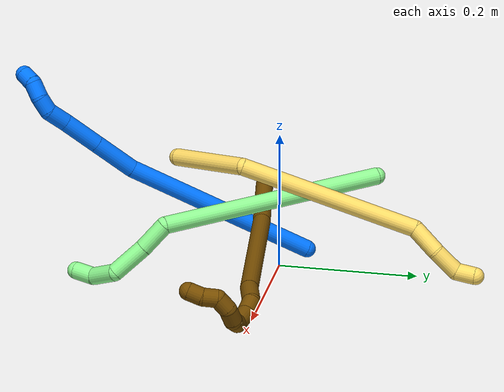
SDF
<sdf version="1.7">
 <world name="default">
  <model name="photoneo_s_sensor">
   <static>1</static>
   <pose>0 0 2 1.57079 1.57079 3.14159</pose>
   <link name="link">
    <inertial><mass>0.1</mass></inertial>
    <sensor name="sensor" type="depth">
     <update_rate>30</update_rate>
     <camera>
      <horizontal_fov>1.22</horizontal_fov>
      <image><width>1920</width><height>1200</height><format>B8G8R8</format></image>
      <clip><near>0.1</near><far>4</far></clip>
      <depth_camera><output>points</output></depth_camera>
     </camera>
     <plugin name="camera_plugin" filename="libgazebo_ros_depth_camera.so">
      <baseline>0.2</baseline>
      <alwaysOn>1</alwaysOn>
      <updateRate>0.0</updateRate>
      <cameraName>camera_ir</cameraName>
      <imageTopicName>/camera/color/image_raw</imageTopicName>
      <cameraInfoTopicName>/camera/color/camera_info</cameraInfoTopicName>
      <depthImageTopicName>/camera/depth/image_raw</depthImageTopicName>
      <depthImageCameraInfoTopicName>/camera/depth/camera_info</depthImageCameraInfoTopicName>
      <pointCloudTopicName>/camera/depth/points</pointCloudTopicName>
      <frameName>fr_optical</frameName>
      <pointCloudCutoff>0.1</pointCloudCutoff>
      <pointCloudCutoffMax>2.0</pointCloudCutoffMax>
      <distortionK1>0</distortionK1>
      <distortionK2>0</distortionK2>
      <distortionK3>0</distortionK3>
      <distortionT1>0</distortionT1>
      <distortionT2>0</distortionT2>
      <CxPrime>0</CxPrime>
      <Cx>0</Cx>
      <Cy>0</Cy>
      <focalLength>0</focalLength>
      <hackBaseline>0</hackBaseline>
     </plugin>
    </sensor>
   </link>
  </model>
  <model name="5">
   <static>0</static>
   <link name="5">
    <collision name="collision-cylinder-e_1_1_4">
     <pose>0.063119 -0.00054 0.004887 0.110085 1.49306 0.101858</pose>
     <geometry><cylinder><radius>0.0125</radius><length>0.12662</length></cylinder></geometry>
     <surface>
      <friction><ode><mu>1.16</mu><mu2>1.16</mu2><slip1>0</slip1><slip2>0</slip2></ode></friction>
      <contact><ode><kp>1e+06</kp><kd>1</kd><max_vel>0</max_vel><min_depth>0.001</min_depth></ode></contact>
     </surface>
    </collision>
    <visual name="visual-cylinder-e_1_1_4">
     <pose>0.063119 -0.00054 0.004887 0.110085 1.49306 0.101858</pose>
     <geometry><cylinder><radius>0.0125</radius><length>0.12662</length></cylinder></geometry>
     <material><ambient>1 0.858824 0.4 1</ambient></material>
    </visual>
    <collision name="collision-cylinder-e_2_4_5">
     <pose>0.226937 0.041229 -0.060862 -2.60192 0.885378 -2.08531</pose>
     <geometry><cylinder><radius>0.0125</radius><length>0.260152</length></cylinder></geometry>
     <surface>
      <friction><ode><mu>1.16</mu><mu2>1.16</mu2><slip1>0</slip1><slip2>0</slip2></ode></friction>
      <contact><ode><kp>1e+06</kp><kd>1</kd><max_vel>0</max_vel><min_depth>0.001</min_depth></ode></contact>
     </surface>
    </collision>
    <visual name="visual-cylinder-e_2_4_5">
     <pose>0.226937 0.041229 -0.060862 -2.60192 0.885378 -2.08531</pose>
     <geometry><cylinder><radius>0.0125</radius><length>0.260152</length></cylinder></geometry>
     <material><ambient>1 0.858824 0.4 1</ambient></material>
    </visual>
    <collision name="collision-cylinder-e_3_5_6">
     <pose>0.343846 0.079712 -0.146368 2.88968 0.812487 2.56904</pose>
     <geometry><cylinder><radius>0.0125</radius><length>0.044657</length></cylinder></geometry>
     <surface>
      <friction><ode><mu>1.16</mu><mu2>1.16</mu2><slip1>0</slip1><slip2>0</slip2></ode></friction>
      <contact><ode><kp>1e+06</kp><kd>1</kd><max_vel>0</max_vel><min_depth>0.001</min_depth></ode></contact>
     </surface>
    </collision>
    <visual name="visual-cylinder-e_3_5_6">
     <pose>0.343846 0.079712 -0.146368 2.88968 0.812487 2.56904</pose>
     <geometry><cylinder><radius>0.0125</radius><length>0.044657</length></cylinder></geometry>
     <material><ambient>1 0.858824 0.4 1</ambient></material>
    </visual>
    <collision name="collision-cylinder-e_4_6_7">
     <pose>0.371925 0.076392 -0.177398 -3.11021 0.633227 -3.04587</pose>
     <geometry><cylinder><radius>0.0125</radius><length>0.040113</length></cylinder></geometry>
     <surface>
      <friction><ode><mu>1.16</mu><mu2>1.16</mu2><slip1>0</slip1><slip2>0</slip2></ode></friction>
      <contact><ode><kp>1e+06</kp><kd>1</kd><max_vel>0</max_vel><min_depth>0.001</min_depth></ode></contact>
     </surface>
    </collision>
    <visual name="visual-cylinder-e_4_6_7">
     <pose>0.371925 0.076392 -0.177398 -3.11021 0.633227 -3.04587</pose>
     <geometry><cylinder><radius>0.0125</radius><length>0.040113</length></cylinder></geometry>
     <material><ambient>1 0.858824 0.4 1</ambient></material>
    </visual>
    <collision name="collision-cylinder-e_5_7_2">
     <pose>0.396855 0.080536 -0.197876 -2.44161 1.16282 -2.12759</pose>
     <geometry><cylinder><radius>0.0125</radius><length>0.028458</length></cylinder></geometry>
     <surface>
      <friction><ode><mu>1.16</mu><mu2>1.16</mu2><slip1>0</slip1><slip2>0</slip2></ode></friction>
      <contact><ode><kp>1e+06</kp><kd>1</kd><max_vel>0</max_vel><min_depth>0.001</min_depth></ode></contact>
     </surface>
    </collision>
    <visual name="visual-cylinder-e_5_7_2">
     <pose>0.396855 0.080536 -0.197876 -2.44161 1.16282 -2.12759</pose>
     <geometry><cylinder><radius>0.0125</radius><length>0.028458</length></cylinder></geometry>
     <material><ambient>1 0.858824 0.4 1</ambient></material>
    </visual>
    <collision name="collision-sphere-2">
     <pose>0.409916 0.084173 -0.202194 0 -0 0</pose>
     <geometry><sphere><radius>0.0125</radius></sphere></geometry>
     <surface>
      <friction><ode><mu>1.16</mu><mu2>1.16</mu2><slip1>0</slip1><slip2>0</slip2></ode></friction>
      <contact><ode><kp>1e+06</kp><kd>1</kd><max_vel>0</max_vel><min_depth>0.001</min_depth></ode></contact>
     </surface>
    </collision>
    <visual name="visual-sphere-2">
     <pose>0.409916 0.084173 -0.202194 0 -0 0</pose>
     <geometry><sphere><radius>0.0125</radius></sphere></geometry>
     <material><ambient>1 0.858824 0.4 1</ambient></material>
    </visual>
    <collision name="collision-sphere-7">
     <pose>0.383793 0.076899 -0.193558 0 -0 0</pose>
     <geometry><sphere><radius>0.0125</radius></sphere></geometry>
     <surface>
      <friction><ode><mu>1.16</mu><mu2>1.16</mu2><slip1>0</slip1><slip2>0</slip2></ode></friction>
      <contact><ode><kp>1e+06</kp><kd>1</kd><max_vel>0</max_vel><min_depth>0.001</min_depth></ode></contact>
     </surface>
    </collision>
    <visual name="visual-sphere-7">
     <pose>0.383793 0.076899 -0.193558 0 -0 0</pose>
     <geometry><sphere><radius>0.0125</radius></sphere></geometry>
     <material><ambient>1 0.858824 0.4 1</ambient></material>
    </visual>
    <collision name="collision-sphere-6">
     <pose>0.360057 0.075884 -0.161238 0 -0 0</pose>
     <geometry><sphere><radius>0.0125</radius></sphere></geometry>
     <surface>
      <friction><ode><mu>1.16</mu><mu2>1.16</mu2><slip1>0</slip1><slip2>0</slip2></ode></friction>
      <contact><ode><kp>1e+06</kp><kd>1</kd><max_vel>0</max_vel><min_depth>0.001</min_depth></ode></contact>
     </surface>
    </collision>
    <visual name="visual-sphere-6">
     <pose>0.360057 0.075884 -0.161238 0 -0 0</pose>
     <geometry><sphere><radius>0.0125</radius></sphere></geometry>
     <material><ambient>1 0.858824 0.4 1</ambient></material>
    </visual>
    <collision name="collision-sphere-5">
     <pose>0.327636 0.083539 -0.131497 0 -0 0</pose>
     <geometry><sphere><radius>0.0125</radius></sphere></geometry>
     <surface>
      <friction><ode><mu>1.16</mu><mu2>1.16</mu2><slip1>0</slip1><slip2>0</slip2></ode></friction>
      <contact><ode><kp>1e+06</kp><kd>1</kd><max_vel>0</max_vel><min_depth>0.001</min_depth></ode></contact>
     </surface>
    </collision>
    <visual name="visual-sphere-5">
     <pose>0.327636 0.083539 -0.131497 0 -0 0</pose>
     <geometry><sphere><radius>0.0125</radius></sphere></geometry>
     <material><ambient>1 0.858824 0.4 1</ambient></material>
    </visual>
    <collision name="collision-sphere-1">
     <geometry><sphere><radius>0.0125</radius></sphere></geometry>
     <surface>
      <friction><ode><mu>1.16</mu><mu2>1.16</mu2><slip1>0</slip1><slip2>0</slip2></ode></friction>
      <contact><ode><kp>1e+06</kp><kd>1</kd><max_vel>0</max_vel><min_depth>0.001</min_depth></ode></contact>
     </surface>
    </collision>
    <visual name="visual-sphere-1">
     <geometry><sphere><radius>0.0125</radius></sphere></geometry>
     <material><ambient>1 0.858824 0.4 1</ambient></material>
    </visual>
    <collision name="collision-sphere-4">
     <pose>0.126238 -0.00108 0.009774 0 -0 0</pose>
     <geometry><sphere><radius>0.0125</radius></sphere></geometry>
     <surface>
      <friction><ode><mu>1.16</mu><mu2>1.16</mu2><slip1>0</slip1><slip2>0</slip2></ode></friction>
      <contact><ode><kp>1e+06</kp><kd>1</kd><max_vel>0</max_vel><min_depth>0.001</min_depth></ode></contact>
     </surface>
    </collision>
    <visual name="visual-sphere-4">
     <pose>0.126238 -0.00108 0.009774 0 -0 0</pose>
     <geometry><sphere><radius>0.0125</radius></sphere></geometry>
     <material><ambient>1 0.858824 0.4 1</ambient></material>
    </visual>
    <inertial>
     <pose>0.217196 0.039147 -0.068996 0 -0 0</pose>
     <mass>0.5</mass>
     <inertia>
      <ixx>-0.001237</ixx>
      <ixy>0</ixy>
      <ixz>0</ixz>
      <iyy>0.000523</iyy>
      <iyz>0</iyz>
      <izz>-0.001825</izz>
     </inertia>
    </inertial>
   </link>
   <pose>-0.045144 -0.159032 0.137388 0.398638 -0.069345 1.089</pose>
  </model>
  <model name="12">
   <static>0</static>
   <link name="12">
    <collision name="collision-cylinder-e_1_1_4">
     <pose>0.047158 0.010054 -0.021829 -2.70995 1.09948 -2.45439</pose>
     <geometry><cylinder><radius>0.0125</radius><length>0.105857</length></cylinder></geometry>
     <surface>
      <friction><ode><mu>1.16</mu><mu2>1.16</mu2><slip1>0</slip1><slip2>0</slip2></ode></friction>
      <contact><ode><kp>1e+06</kp><kd>1</kd><max_vel>0</max_vel><min_depth>0.001</min_depth></ode></contact>
     </surface>
    </collision>
    <visual name="visual-cylinder-e_1_1_4">
     <pose>0.047158 0.010054 -0.021829 -2.70995 1.09948 -2.45439</pose>
     <geometry><cylinder><radius>0.0125</radius><length>0.105857</length></cylinder></geometry>
     <material><ambient>0.466667 0.301961 0 1</ambient></material>
    </visual>
    <collision name="collision-cylinder-e_2_4_5">
     <pose>0.182712 0.031617 -0.086038 -2.87645 1.10971 -2.71775</pose>
     <geometry><cylinder><radius>0.0125</radius><length>0.197409</length></cylinder></geometry>
     <surface>
      <friction><ode><mu>1.16</mu><mu2>1.16</mu2><slip1>0</slip1><slip2>0</slip2></ode></friction>
      <contact><ode><kp>1e+06</kp><kd>1</kd><max_vel>0</max_vel><min_depth>0.001</min_depth></ode></contact>
     </surface>
    </collision>
    <visual name="visual-cylinder-e_2_4_5">
     <pose>0.182712 0.031617 -0.086038 -2.87645 1.10971 -2.71775</pose>
     <geometry><cylinder><radius>0.0125</radius><length>0.197409</length></cylinder></geometry>
     <material><ambient>0.466667 0.301961 0 1</ambient></material>
    </visual>
    <collision name="collision-cylinder-e_3_5_6">
     <pose>0.288571 0.046626 -0.133743 -2.55976 1.22094 -2.33284</pose>
     <geometry><cylinder><radius>0.0125</radius><length>0.037177</length></cylinder></geometry>
     <surface>
      <friction><ode><mu>1.16</mu><mu2>1.16</mu2><slip1>0</slip1><slip2>0</slip2></ode></friction>
      <contact><ode><kp>1e+06</kp><kd>1</kd><max_vel>0</max_vel><min_depth>0.001</min_depth></ode></contact>
     </surface>
    </collision>
    <visual name="visual-cylinder-e_3_5_6">
     <pose>0.288571 0.046626 -0.133743 -2.55976 1.22094 -2.33284</pose>
     <geometry><cylinder><radius>0.0125</radius><length>0.037177</length></cylinder></geometry>
     <material><ambient>0.466667 0.301961 0 1</ambient></material>
    </visual>
    <collision name="collision-cylinder-e_4_6_7">
     <pose>0.314845 0.052613 -0.147196 -2.8449 0.803272 -2.46493</pose>
     <geometry><cylinder><radius>0.0125</radius><length>0.024489</length></cylinder></geometry>
     <surface>
      <friction><ode><mu>1.16</mu><mu2>1.16</mu2><slip1>0</slip1><slip2>0</slip2></ode></friction>
      <contact><ode><kp>1e+06</kp><kd>1</kd><max_vel>0</max_vel><min_depth>0.001</min_depth></ode></contact>
     </surface>
    </collision>
    <visual name="visual-cylinder-e_4_6_7">
     <pose>0.314845 0.052613 -0.147196 -2.8449 0.803272 -2.46493</pose>
     <geometry><cylinder><radius>0.0125</radius><length>0.024489</length></cylinder></geometry>
     <material><ambient>0.466667 0.301961 0 1</ambient></material>
    </visual>
    <collision name="collision-cylinder-e_5_7_8">
     <pose>0.335044 0.055017 -0.16531 3.13345 0.851014 3.12363</pose>
     <geometry><cylinder><radius>0.0125</radius><length>0.03029</length></cylinder></geometry>
     <surface>
      <friction><ode><mu>1.16</mu><mu2>1.16</mu2><slip1>0</slip1><slip2>0</slip2></ode></friction>
      <contact><ode><kp>1e+06</kp><kd>1</kd><max_vel>0</max_vel><min_depth>0.001</min_depth></ode></contact>
     </surface>
    </collision>
    <visual name="visual-cylinder-e_5_7_8">
     <pose>0.335044 0.055017 -0.16531 3.13345 0.851014 3.12363</pose>
     <geometry><cylinder><radius>0.0125</radius><length>0.03029</length></cylinder></geometry>
     <material><ambient>0.466667 0.301961 0 1</ambient></material>
    </visual>
    <collision name="collision-cylinder-e_6_8_9">
     <pose>0.355038 0.049137 -0.178081 2.0189 0.9288 1.34536</pose>
     <geometry><cylinder><radius>0.0125</radius><length>0.02149</length></cylinder></geometry>
     <surface>
      <friction><ode><mu>1.16</mu><mu2>1.16</mu2><slip1>0</slip1><slip2>0</slip2></ode></friction>
      <contact><ode><kp>1e+06</kp><kd>1</kd><max_vel>0</max_vel><min_depth>0.001</min_depth></ode></contact>
     </surface>
    </collision>
    <visual name="visual-cylinder-e_6_8_9">
     <pose>0.355038 0.049137 -0.178081 2.0189 0.9288 1.34536</pose>
     <geometry><cylinder><radius>0.0125</radius><length>0.02149</length></cylinder></geometry>
     <material><ambient>0.466667 0.301961 0 1</ambient></material>
    </visual>
    <collision name="collision-cylinder-e_7_9_10">
     <pose>0.36825 0.033339 -0.180921 1.57603 0.431653 0.433849</pose>
     <geometry><cylinder><radius>0.0125</radius><length>0.022018</length></cylinder></geometry>
     <surface>
      <friction><ode><mu>1.16</mu><mu2>1.16</mu2><slip1>0</slip1><slip2>0</slip2></ode></friction>
      <contact><ode><kp>1e+06</kp><kd>1</kd><max_vel>0</max_vel><min_depth>0.001</min_depth></ode></contact>
     </surface>
    </collision>
    <visual name="visual-cylinder-e_7_9_10">
     <pose>0.36825 0.033339 -0.180921 1.57603 0.431653 0.433849</pose>
     <geometry><cylinder><radius>0.0125</radius><length>0.022018</length></cylinder></geometry>
     <material><ambient>0.466667 0.301961 0 1</ambient></material>
    </visual>
    <collision name="collision-cylinder-e_8_10_11">
     <pose>0.372751 0.01331 -0.183525 1.81988 -0.010123 -0.01302</pose>
     <geometry><cylinder><radius>0.0125</radius><length>0.020701</length></cylinder></geometry>
     <surface>
      <friction><ode><mu>1.16</mu><mu2>1.16</mu2><slip1>0</slip1><slip2>0</slip2></ode></friction>
      <contact><ode><kp>1e+06</kp><kd>1</kd><max_vel>0</max_vel><min_depth>0.001</min_depth></ode></contact>
     </surface>
    </collision>
    <visual name="visual-cylinder-e_8_10_11">
     <pose>0.372751 0.01331 -0.183525 1.81988 -0.010123 -0.01302</pose>
     <geometry><cylinder><radius>0.0125</radius><length>0.020701</length></cylinder></geometry>
     <material><ambient>0.466667 0.301961 0 1</ambient></material>
    </visual>
    <collision name="collision-cylinder-e_9_11_12">
     <pose>0.370544 -0.002366 -0.194353 2.54308 -0.206774 -0.648845</pose>
     <geometry><cylinder><radius>0.0125</radius><length>0.020473</length></cylinder></geometry>
     <surface>
      <friction><ode><mu>1.16</mu><mu2>1.16</mu2><slip1>0</slip1><slip2>0</slip2></ode></friction>
      <contact><ode><kp>1e+06</kp><kd>1</kd><max_vel>0</max_vel><min_depth>0.001</min_depth></ode></contact>
     </surface>
    </collision>
    <visual name="visual-cylinder-e_9_11_12">
     <pose>0.370544 -0.002366 -0.194353 2.54308 -0.206774 -0.648845</pose>
     <geometry><cylinder><radius>0.0125</radius><length>0.020473</length></cylinder></geometry>
     <material><ambient>0.466667 0.301961 0 1</ambient></material>
    </visual>
    <collision name="collision-cylinder-e_10_12_2">
     <pose>0.364934 -0.015256 -0.208643 2.26344 -0.356729 -0.733033</pose>
     <geometry><cylinder><radius>0.0125</radius><length>0.020097</length></cylinder></geometry>
     <surface>
      <friction><ode><mu>1.16</mu><mu2>1.16</mu2><slip1>0</slip1><slip2>0</slip2></ode></friction>
      <contact><ode><kp>1e+06</kp><kd>1</kd><max_vel>0</max_vel><min_depth>0.001</min_depth></ode></contact>
     </surface>
    </collision>
    <visual name="visual-cylinder-e_10_12_2">
     <pose>0.364934 -0.015256 -0.208643 2.26344 -0.356729 -0.733033</pose>
     <geometry><cylinder><radius>0.0125</radius><length>0.020097</length></cylinder></geometry>
     <material><ambient>0.466667 0.301961 0 1</ambient></material>
    </visual>
    <collision name="collision-sphere-2">
     <pose>0.361425 -0.022502 -0.214656 0 -0 0</pose>
     <geometry><sphere><radius>0.0125</radius></sphere></geometry>
     <surface>
      <friction><ode><mu>1.16</mu><mu2>1.16</mu2><slip1>0</slip1><slip2>0</slip2></ode></friction>
      <contact><ode><kp>1e+06</kp><kd>1</kd><max_vel>0</max_vel><min_depth>0.001</min_depth></ode></contact>
     </surface>
    </collision>
    <visual name="visual-sphere-2">
     <pose>0.361425 -0.022502 -0.214656 0 -0 0</pose>
     <geometry><sphere><radius>0.0125</radius></sphere></geometry>
     <material><ambient>0.466667 0.301961 0 1</ambient></material>
    </visual>
    <collision name="collision-sphere-12">
     <pose>0.368443 -0.00801 -0.20263 0 -0 0</pose>
     <geometry><sphere><radius>0.0125</radius></sphere></geometry>
     <surface>
      <friction><ode><mu>1.16</mu><mu2>1.16</mu2><slip1>0</slip1><slip2>0</slip2></ode></friction>
      <contact><ode><kp>1e+06</kp><kd>1</kd><max_vel>0</max_vel><min_depth>0.001</min_depth></ode></contact>
     </surface>
    </collision>
    <visual name="visual-sphere-12">
     <pose>0.368443 -0.00801 -0.20263 0 -0 0</pose>
     <geometry><sphere><radius>0.0125</radius></sphere></geometry>
     <material><ambient>0.466667 0.301961 0 1</ambient></material>
    </visual>
    <collision name="collision-sphere-11">
     <pose>0.372646 0.003279 -0.186076 0 -0 0</pose>
     <geometry><sphere><radius>0.0125</radius></sphere></geometry>
     <surface>
      <friction><ode><mu>1.16</mu><mu2>1.16</mu2><slip1>0</slip1><slip2>0</slip2></ode></friction>
      <contact><ode><kp>1e+06</kp><kd>1</kd><max_vel>0</max_vel><min_depth>0.001</min_depth></ode></contact>
     </surface>
    </collision>
    <visual name="visual-sphere-11">
     <pose>0.372646 0.003279 -0.186076 0 -0 0</pose>
     <geometry><sphere><radius>0.0125</radius></sphere></geometry>
     <material><ambient>0.466667 0.301961 0 1</ambient></material>
    </visual>
    <collision name="collision-sphere-10">
     <pose>0.372856 0.02334 -0.180973 0 -0 0</pose>
     <geometry><sphere><radius>0.0125</radius></sphere></geometry>
     <surface>
      <friction><ode><mu>1.16</mu><mu2>1.16</mu2><slip1>0</slip1><slip2>0</slip2></ode></friction>
      <contact><ode><kp>1e+06</kp><kd>1</kd><max_vel>0</max_vel><min_depth>0.001</min_depth></ode></contact>
     </surface>
    </collision>
    <visual name="visual-sphere-10">
     <pose>0.372856 0.02334 -0.180973 0 -0 0</pose>
     <geometry><sphere><radius>0.0125</radius></sphere></geometry>
     <material><ambient>0.466667 0.301961 0 1</ambient></material>
    </visual>
    <collision name="collision-sphere-9">
     <pose>0.363644 0.043339 -0.180869 0 -0 0</pose>
     <geometry><sphere><radius>0.0125</radius></sphere></geometry>
     <surface>
      <friction><ode><mu>1.16</mu><mu2>1.16</mu2><slip1>0</slip1><slip2>0</slip2></ode></friction>
      <contact><ode><kp>1e+06</kp><kd>1</kd><max_vel>0</max_vel><min_depth>0.001</min_depth></ode></contact>
     </surface>
    </collision>
    <visual name="visual-sphere-9">
     <pose>0.363644 0.043339 -0.180869 0 -0 0</pose>
     <geometry><sphere><radius>0.0125</radius></sphere></geometry>
     <material><ambient>0.466667 0.301961 0 1</ambient></material>
    </visual>
    <collision name="collision-sphere-4">
     <pose>0.094316 0.020109 -0.043657 0 -0 0</pose>
     <geometry><sphere><radius>0.0125</radius></sphere></geometry>
     <surface>
      <friction><ode><mu>1.16</mu><mu2>1.16</mu2><slip1>0</slip1><slip2>0</slip2></ode></friction>
      <contact><ode><kp>1e+06</kp><kd>1</kd><max_vel>0</max_vel><min_depth>0.001</min_depth></ode></contact>
     </surface>
    </collision>
    <visual name="visual-sphere-4">
     <pose>0.094316 0.020109 -0.043657 0 -0 0</pose>
     <geometry><sphere><radius>0.0125</radius></sphere></geometry>
     <material><ambient>0.466667 0.301961 0 1</ambient></material>
    </visual>
    <collision name="collision-sphere-1">
     <geometry><sphere><radius>0.0125</radius></sphere></geometry>
     <surface>
      <friction><ode><mu>1.16</mu><mu2>1.16</mu2><slip1>0</slip1><slip2>0</slip2></ode></friction>
      <contact><ode><kp>1e+06</kp><kd>1</kd><max_vel>0</max_vel><min_depth>0.001</min_depth></ode></contact>
     </surface>
    </collision>
    <visual name="visual-sphere-1">
     <geometry><sphere><radius>0.0125</radius></sphere></geometry>
     <material><ambient>0.466667 0.301961 0 1</ambient></material>
    </visual>
    <collision name="collision-sphere-8">
     <pose>0.346432 0.054936 -0.175293 0 -0 0</pose>
     <geometry><sphere><radius>0.0125</radius></sphere></geometry>
     <surface>
      <friction><ode><mu>1.16</mu><mu2>1.16</mu2><slip1>0</slip1><slip2>0</slip2></ode></friction>
      <contact><ode><kp>1e+06</kp><kd>1</kd><max_vel>0</max_vel><min_depth>0.001</min_depth></ode></contact>
     </surface>
    </collision>
    <visual name="visual-sphere-8">
     <pose>0.346432 0.054936 -0.175293 0 -0 0</pose>
     <geometry><sphere><radius>0.0125</radius></sphere></geometry>
     <material><ambient>0.466667 0.301961 0 1</ambient></material>
    </visual>
    <collision name="collision-sphere-5">
     <pose>0.271109 0.043125 -0.128419 0 -0 0</pose>
     <geometry><sphere><radius>0.0125</radius></sphere></geometry>
     <surface>
      <friction><ode><mu>1.16</mu><mu2>1.16</mu2><slip1>0</slip1><slip2>0</slip2></ode></friction>
      <contact><ode><kp>1e+06</kp><kd>1</kd><max_vel>0</max_vel><min_depth>0.001</min_depth></ode></contact>
     </surface>
    </collision>
    <visual name="visual-sphere-5">
     <pose>0.271109 0.043125 -0.128419 0 -0 0</pose>
     <geometry><sphere><radius>0.0125</radius></sphere></geometry>
     <material><ambient>0.466667 0.301961 0 1</ambient></material>
    </visual>
    <collision name="collision-sphere-6">
     <pose>0.306033 0.050128 -0.139066 0 -0 0</pose>
     <geometry><sphere><radius>0.0125</radius></sphere></geometry>
     <surface>
      <friction><ode><mu>1.16</mu><mu2>1.16</mu2><slip1>0</slip1><slip2>0</slip2></ode></friction>
      <contact><ode><kp>1e+06</kp><kd>1</kd><max_vel>0</max_vel><min_depth>0.001</min_depth></ode></contact>
     </surface>
    </collision>
    <visual name="visual-sphere-6">
     <pose>0.306033 0.050128 -0.139066 0 -0 0</pose>
     <geometry><sphere><radius>0.0125</radius></sphere></geometry>
     <material><ambient>0.466667 0.301961 0 1</ambient></material>
    </visual>
    <collision name="collision-sphere-7">
     <pose>0.323656 0.055099 -0.155326 0 -0 0</pose>
     <geometry><sphere><radius>0.0125</radius></sphere></geometry>
     <surface>
      <friction><ode><mu>1.16</mu><mu2>1.16</mu2><slip1>0</slip1><slip2>0</slip2></ode></friction>
      <contact><ode><kp>1e+06</kp><kd>1</kd><max_vel>0</max_vel><min_depth>0.001</min_depth></ode></contact>
     </surface>
    </collision>
    <visual name="visual-sphere-7">
     <pose>0.323656 0.055099 -0.155326 0 -0 0</pose>
     <geometry><sphere><radius>0.0125</radius></sphere></geometry>
     <material><ambient>0.466667 0.301961 0 1</ambient></material>
    </visual>
    <inertial>
     <pose>0.216044 0.027409 -0.105322 0 -0 0</pose>
     <mass>0.5</mass>
     <inertia>
      <ixx>-0.000421</ixx>
      <ixy>0</ixy>
      <ixz>0</ixz>
      <iyy>0.000588</iyy>
      <iyz>0</iyz>
      <izz>-0.000791</izz>
     </inertia>
    </inertial>
   </link>
   <pose>-0.070498 -0.036131 0.095652 -1.14607 -0.209114 0.46599</pose>
  </model>
  <model name="13">
   <static>0</static>
   <link name="13">
    <collision name="collision-cylinder-e_1_1_4">
     <pose>-8.6e-05 -0.000452 0.164866 0.00274 -0.000521 -1e-06</pose>
     <geometry><cylinder><radius>0.0125</radius><length>0.329733</length></cylinder></geometry>
     <surface>
      <friction><ode><mu>1.16</mu><mu2>1.16</mu2><slip1>0</slip1><slip2>0</slip2></ode></friction>
      <contact><ode><kp>1e+06</kp><kd>1</kd><max_vel>0</max_vel><min_depth>0.001</min_depth></ode></contact>
     </surface>
    </collision>
    <visual name="visual-cylinder-e_1_1_4">
     <pose>-8.6e-05 -0.000452 0.164866 0.00274 -0.000521 -1e-06</pose>
     <geometry><cylinder><radius>0.0125</radius><length>0.329733</length></cylinder></geometry>
     <material><ambient>0.564706 0.984314 0.572549 1</ambient></material>
    </visual>
    <collision name="collision-cylinder-e_2_4_5">
     <pose>0.013939 -0.006573 0.345599 0.343144 0.697143 0.125774</pose>
     <geometry><cylinder><radius>0.0125</radius><length>0.043957</length></cylinder></geometry>
     <surface>
      <friction><ode><mu>1.16</mu><mu2>1.16</mu2><slip1>0</slip1><slip2>0</slip2></ode></friction>
      <contact><ode><kp>1e+06</kp><kd>1</kd><max_vel>0</max_vel><min_depth>0.001</min_depth></ode></contact>
     </surface>
    </collision>
    <visual name="visual-cylinder-e_2_4_5">
     <pose>0.013939 -0.006573 0.345599 0.343144 0.697143 0.125774</pose>
     <geometry><cylinder><radius>0.0125</radius><length>0.043957</length></cylinder></geometry>
     <material><ambient>0.564706 0.984314 0.572549 1</ambient></material>
    </visual>
    <collision name="collision-cylinder-e_3_5_6">
     <pose>0.042803 -0.018923 0.382689 0.305009 0.58553 0.092591</pose>
     <geometry><cylinder><radius>0.0125</radius><length>0.053392</length></cylinder></geometry>
     <surface>
      <friction><ode><mu>1.16</mu><mu2>1.16</mu2><slip1>0</slip1><slip2>0</slip2></ode></friction>
      <contact><ode><kp>1e+06</kp><kd>1</kd><max_vel>0</max_vel><min_depth>0.001</min_depth></ode></contact>
     </surface>
    </collision>
    <visual name="visual-cylinder-e_3_5_6">
     <pose>0.042803 -0.018923 0.382689 0.305009 0.58553 0.092591</pose>
     <geometry><cylinder><radius>0.0125</radius><length>0.053392</length></cylinder></geometry>
     <material><ambient>0.564706 0.984314 0.572549 1</ambient></material>
    </visual>
    <collision name="collision-cylinder-e_4_6_7">
     <pose>0.062135 -0.043955 0.414083 1.06464 0.214847 0.126872</pose>
     <geometry><cylinder><radius>0.0125</radius><length>0.042949</length></cylinder></geometry>
     <surface>
      <friction><ode><mu>1.16</mu><mu2>1.16</mu2><slip1>0</slip1><slip2>0</slip2></ode></friction>
      <contact><ode><kp>1e+06</kp><kd>1</kd><max_vel>0</max_vel><min_depth>0.001</min_depth></ode></contact>
     </surface>
    </collision>
    <visual name="visual-cylinder-e_4_6_7">
     <pose>0.062135 -0.043955 0.414083 1.06464 0.214847 0.126872</pose>
     <geometry><cylinder><radius>0.0125</radius><length>0.042949</length></cylinder></geometry>
     <material><ambient>0.564706 0.984314 0.572549 1</ambient></material>
    </visual>
    <collision name="collision-cylinder-e_5_7_2">
     <pose>0.063038 -0.073975 0.432907 0.932864 -0.247794 -0.125239</pose>
     <geometry><cylinder><radius>0.0125</radius><length>0.029969</length></cylinder></geometry>
     <surface>
      <friction><ode><mu>1.16</mu><mu2>1.16</mu2><slip1>0</slip1><slip2>0</slip2></ode></friction>
      <contact><ode><kp>1e+06</kp><kd>1</kd><max_vel>0</max_vel><min_depth>0.001</min_depth></ode></contact>
     </surface>
    </collision>
    <visual name="visual-cylinder-e_5_7_2">
     <pose>0.063038 -0.073975 0.432907 0.932864 -0.247794 -0.125239</pose>
     <geometry><cylinder><radius>0.0125</radius><length>0.029969</length></cylinder></geometry>
     <material><ambient>0.564706 0.984314 0.572549 1</ambient></material>
    </visual>
    <collision name="collision-sphere-2">
     <pose>0.059363 -0.085645 0.441558 0 -0 0</pose>
     <geometry><sphere><radius>0.0125</radius></sphere></geometry>
     <surface>
      <friction><ode><mu>1.16</mu><mu2>1.16</mu2><slip1>0</slip1><slip2>0</slip2></ode></friction>
      <contact><ode><kp>1e+06</kp><kd>1</kd><max_vel>0</max_vel><min_depth>0.001</min_depth></ode></contact>
     </surface>
    </collision>
    <visual name="visual-sphere-2">
     <pose>0.059363 -0.085645 0.441558 0 -0 0</pose>
     <geometry><sphere><radius>0.0125</radius></sphere></geometry>
     <material><ambient>0.564706 0.984314 0.572549 1</ambient></material>
    </visual>
    <collision name="collision-sphere-7">
     <pose>0.066713 -0.062305 0.424255 0 -0 0</pose>
     <geometry><sphere><radius>0.0125</radius></sphere></geometry>
     <surface>
      <friction><ode><mu>1.16</mu><mu2>1.16</mu2><slip1>0</slip1><slip2>0</slip2></ode></friction>
      <contact><ode><kp>1e+06</kp><kd>1</kd><max_vel>0</max_vel><min_depth>0.001</min_depth></ode></contact>
     </surface>
    </collision>
    <visual name="visual-sphere-7">
     <pose>0.066713 -0.062305 0.424255 0 -0 0</pose>
     <geometry><sphere><radius>0.0125</radius></sphere></geometry>
     <material><ambient>0.564706 0.984314 0.572549 1</ambient></material>
    </visual>
    <collision name="collision-sphere-6">
     <pose>0.057557 -0.025605 0.403911 0 -0 0</pose>
     <geometry><sphere><radius>0.0125</radius></sphere></geometry>
     <surface>
      <friction><ode><mu>1.16</mu><mu2>1.16</mu2><slip1>0</slip1><slip2>0</slip2></ode></friction>
      <contact><ode><kp>1e+06</kp><kd>1</kd><max_vel>0</max_vel><min_depth>0.001</min_depth></ode></contact>
     </surface>
    </collision>
    <visual name="visual-sphere-6">
     <pose>0.057557 -0.025605 0.403911 0 -0 0</pose>
     <geometry><sphere><radius>0.0125</radius></sphere></geometry>
     <material><ambient>0.564706 0.984314 0.572549 1</ambient></material>
    </visual>
    <collision name="collision-sphere-5">
     <pose>0.02805 -0.012242 0.361468 0 -0 0</pose>
     <geometry><sphere><radius>0.0125</radius></sphere></geometry>
     <surface>
      <friction><ode><mu>1.16</mu><mu2>1.16</mu2><slip1>0</slip1><slip2>0</slip2></ode></friction>
      <contact><ode><kp>1e+06</kp><kd>1</kd><max_vel>0</max_vel><min_depth>0.001</min_depth></ode></contact>
     </surface>
    </collision>
    <visual name="visual-sphere-5">
     <pose>0.02805 -0.012242 0.361468 0 -0 0</pose>
     <geometry><sphere><radius>0.0125</radius></sphere></geometry>
     <material><ambient>0.564706 0.984314 0.572549 1</ambient></material>
    </visual>
    <collision name="collision-sphere-1">
     <geometry><sphere><radius>0.0125</radius></sphere></geometry>
     <surface>
      <friction><ode><mu>1.16</mu><mu2>1.16</mu2><slip1>0</slip1><slip2>0</slip2></ode></friction>
      <contact><ode><kp>1e+06</kp><kd>1</kd><max_vel>0</max_vel><min_depth>0.001</min_depth></ode></contact>
     </surface>
    </collision>
    <visual name="visual-sphere-1">
     <geometry><sphere><radius>0.0125</radius></sphere></geometry>
     <material><ambient>0.564706 0.984314 0.572549 1</ambient></material>
    </visual>
    <collision name="collision-sphere-4">
     <pose>-0.000172 -0.000903 0.329731 0 -0 0</pose>
     <geometry><sphere><radius>0.0125</radius></sphere></geometry>
     <surface>
      <friction><ode><mu>1.16</mu><mu2>1.16</mu2><slip1>0</slip1><slip2>0</slip2></ode></friction>
      <contact><ode><kp>1e+06</kp><kd>1</kd><max_vel>0</max_vel><min_depth>0.001</min_depth></ode></contact>
     </surface>
    </collision>
    <visual name="visual-sphere-4">
     <pose>-0.000172 -0.000903 0.329731 0 -0 0</pose>
     <geometry><sphere><radius>0.0125</radius></sphere></geometry>
     <material><ambient>0.564706 0.984314 0.572549 1</ambient></material>
    </visual>
    <inertial>
     <pose>0.014855 -0.011106 0.241488 0 -0 0</pose>
     <mass>0.5</mass>
     <inertia>
      <ixx>0.003038</ixx>
      <ixy>0</ixy>
      <ixz>0</ixz>
      <iyy>0.003025</iyy>
      <iyz>0</iyz>
      <izz>4.5e-05</izz>
     </inertia>
    </inertial>
   </link>
   <pose>-0.077714 0.127101 0.118245 2.01088 1.3997 1.04533</pose>
  </model>
  <model name="14">
   <static>0</static>
   <link name="14">
    <collision name="collision-cylinder-e_1_1_4">
     <pose>0.013069 -0.030327 0.137364 0.217296 0.092641 0.010112</pose>
     <geometry><cylinder><radius>0.0125</radius><length>0.282555</length></cylinder></geometry>
     <surface>
      <friction><ode><mu>1.16</mu><mu2>1.16</mu2><slip1>0</slip1><slip2>0</slip2></ode></friction>
      <contact><ode><kp>1e+06</kp><kd>1</kd><max_vel>0</max_vel><min_depth>0.001</min_depth></ode></contact>
     </surface>
    </collision>
    <visual name="visual-cylinder-e_1_1_4">
     <pose>0.013069 -0.030327 0.137364 0.217296 0.092641 0.010112</pose>
     <geometry><cylinder><radius>0.0125</radius><length>0.282555</length></cylinder></geometry>
     <material><ambient>0 0.462745 1 1</ambient></material>
    </visual>
    <collision name="collision-cylinder-e_2_4_5">
     <pose>0.026619 -0.073559 0.304134 0.413531 0.014963 0.003139</pose>
     <geometry><cylinder><radius>0.0125</radius><length>0.064233</length></cylinder></geometry>
     <surface>
      <friction><ode><mu>1.16</mu><mu2>1.16</mu2><slip1>0</slip1><slip2>0</slip2></ode></friction>
      <contact><ode><kp>1e+06</kp><kd>1</kd><max_vel>0</max_vel><min_depth>0.001</min_depth></ode></contact>
     </surface>
    </collision>
    <visual name="visual-cylinder-e_2_4_5">
     <pose>0.026619 -0.073559 0.304134 0.413531 0.014963 0.003139</pose>
     <geometry><cylinder><radius>0.0125</radius><length>0.064233</length></cylinder></geometry>
     <material><ambient>0 0.462745 1 1</ambient></material>
    </visual>
    <collision name="collision-cylinder-e_3_5_6">
     <pose>0.027581 -0.097607 0.35894 0.413409 0.017336 0.003635</pose>
     <geometry><cylinder><radius>0.0125</radius><length>0.055482</length></cylinder></geometry>
     <surface>
      <friction><ode><mu>1.16</mu><mu2>1.16</mu2><slip1>0</slip1><slip2>0</slip2></ode></friction>
      <contact><ode><kp>1e+06</kp><kd>1</kd><max_vel>0</max_vel><min_depth>0.001</min_depth></ode></contact>
     </surface>
    </collision>
    <visual name="visual-cylinder-e_3_5_6">
     <pose>0.027581 -0.097607 0.35894 0.413409 0.017336 0.003635</pose>
     <geometry><cylinder><radius>0.0125</radius><length>0.055482</length></cylinder></geometry>
     <material><ambient>0 0.462745 1 1</ambient></material>
    </visual>
    <collision name="collision-cylinder-e_4_6_7">
     <pose>0.026533 -0.114581 0.398198 0.39833 -0.101311 -0.020466</pose>
     <geometry><cylinder><radius>0.0125</radius><length>0.030225</length></cylinder></geometry>
     <surface>
      <friction><ode><mu>1.16</mu><mu2>1.16</mu2><slip1>0</slip1><slip2>0</slip2></ode></friction>
      <contact><ode><kp>1e+06</kp><kd>1</kd><max_vel>0</max_vel><min_depth>0.001</min_depth></ode></contact>
     </surface>
    </collision>
    <visual name="visual-cylinder-e_4_6_7">
     <pose>0.026533 -0.114581 0.398198 0.39833 -0.101311 -0.020466</pose>
     <geometry><cylinder><radius>0.0125</radius><length>0.030225</length></cylinder></geometry>
     <material><ambient>0 0.462745 1 1</ambient></material>
    </visual>
    <collision name="collision-cylinder-e_5_7_8">
     <pose>0.026929 -0.128301 0.420101 0.7756 0.169167 0.06924</pose>
     <geometry><cylinder><radius>0.0125</radius><length>0.02286</length></cylinder></geometry>
     <surface>
      <friction><ode><mu>1.16</mu><mu2>1.16</mu2><slip1>0</slip1><slip2>0</slip2></ode></friction>
      <contact><ode><kp>1e+06</kp><kd>1</kd><max_vel>0</max_vel><min_depth>0.001</min_depth></ode></contact>
     </surface>
    </collision>
    <visual name="visual-cylinder-e_5_7_8">
     <pose>0.026929 -0.128301 0.420101 0.7756 0.169167 0.06924</pose>
     <geometry><cylinder><radius>0.0125</radius><length>0.02286</length></cylinder></geometry>
     <material><ambient>0 0.462745 1 1</ambient></material>
    </visual>
    <collision name="collision-cylinder-e_6_8_9">
     <pose>0.034038 -0.144444 0.434468 0.917088 0.462576 0.231466</pose>
     <geometry><cylinder><radius>0.0125</radius><length>0.023238</length></cylinder></geometry>
     <surface>
      <friction><ode><mu>1.16</mu><mu2>1.16</mu2><slip1>0</slip1><slip2>0</slip2></ode></friction>
      <contact><ode><kp>1e+06</kp><kd>1</kd><max_vel>0</max_vel><min_depth>0.001</min_depth></ode></contact>
     </surface>
    </collision>
    <visual name="visual-cylinder-e_6_8_9">
     <pose>0.034038 -0.144444 0.434468 0.917088 0.462576 0.231466</pose>
     <geometry><cylinder><radius>0.0125</radius><length>0.023238</length></cylinder></geometry>
     <material><ambient>0 0.462745 1 1</ambient></material>
    </visual>
    <collision name="collision-cylinder-e_7_9_2">
     <pose>0.0478 -0.155221 0.446677 0.404952 0.929508 0.205135</pose>
     <geometry><cylinder><radius>0.0125</radius><length>0.021407</length></cylinder></geometry>
     <surface>
      <friction><ode><mu>1.16</mu><mu2>1.16</mu2><slip1>0</slip1><slip2>0</slip2></ode></friction>
      <contact><ode><kp>1e+06</kp><kd>1</kd><max_vel>0</max_vel><min_depth>0.001</min_depth></ode></contact>
     </surface>
    </collision>
    <visual name="visual-cylinder-e_7_9_2">
     <pose>0.0478 -0.155221 0.446677 0.404952 0.929508 0.205135</pose>
     <geometry><cylinder><radius>0.0125</radius><length>0.021407</length></cylinder></geometry>
     <material><ambient>0 0.462745 1 1</ambient></material>
    </visual>
    <collision name="collision-sphere-2">
     <pose>0.056377 -0.157743 0.452562 0 -0 0</pose>
     <geometry><sphere><radius>0.0125</radius></sphere></geometry>
     <surface>
      <friction><ode><mu>1.16</mu><mu2>1.16</mu2><slip1>0</slip1><slip2>0</slip2></ode></friction>
      <contact><ode><kp>1e+06</kp><kd>1</kd><max_vel>0</max_vel><min_depth>0.001</min_depth></ode></contact>
     </surface>
    </collision>
    <visual name="visual-sphere-2">
     <pose>0.056377 -0.157743 0.452562 0 -0 0</pose>
     <geometry><sphere><radius>0.0125</radius></sphere></geometry>
     <material><ambient>0 0.462745 1 1</ambient></material>
    </visual>
    <collision name="collision-sphere-9">
     <pose>0.039223 -0.152698 0.440792 0 -0 0</pose>
     <geometry><sphere><radius>0.0125</radius></sphere></geometry>
     <surface>
      <friction><ode><mu>1.16</mu><mu2>1.16</mu2><slip1>0</slip1><slip2>0</slip2></ode></friction>
      <contact><ode><kp>1e+06</kp><kd>1</kd><max_vel>0</max_vel><min_depth>0.001</min_depth></ode></contact>
     </surface>
    </collision>
    <visual name="visual-sphere-9">
     <pose>0.039223 -0.152698 0.440792 0 -0 0</pose>
     <geometry><sphere><radius>0.0125</radius></sphere></geometry>
     <material><ambient>0 0.462745 1 1</ambient></material>
    </visual>
    <collision name="collision-sphere-4">
     <pose>0.026139 -0.060655 0.274728 0 -0 0</pose>
     <geometry><sphere><radius>0.0125</radius></sphere></geometry>
     <surface>
      <friction><ode><mu>1.16</mu><mu2>1.16</mu2><slip1>0</slip1><slip2>0</slip2></ode></friction>
      <contact><ode><kp>1e+06</kp><kd>1</kd><max_vel>0</max_vel><min_depth>0.001</min_depth></ode></contact>
     </surface>
    </collision>
    <visual name="visual-sphere-4">
     <pose>0.026139 -0.060655 0.274728 0 -0 0</pose>
     <geometry><sphere><radius>0.0125</radius></sphere></geometry>
     <material><ambient>0 0.462745 1 1</ambient></material>
    </visual>
    <collision name="collision-sphere-1">
     <geometry><sphere><radius>0.0125</radius></sphere></geometry>
     <surface>
      <friction><ode><mu>1.16</mu><mu2>1.16</mu2><slip1>0</slip1><slip2>0</slip2></ode></friction>
      <contact><ode><kp>1e+06</kp><kd>1</kd><max_vel>0</max_vel><min_depth>0.001</min_depth></ode></contact>
     </surface>
    </collision>
    <visual name="visual-sphere-1">
     <geometry><sphere><radius>0.0125</radius></sphere></geometry>
     <material><ambient>0 0.462745 1 1</ambient></material>
    </visual>
    <collision name="collision-sphere-8">
     <pose>0.028853 -0.13619 0.428145 0 -0 0</pose>
     <geometry><sphere><radius>0.0125</radius></sphere></geometry>
     <surface>
      <friction><ode><mu>1.16</mu><mu2>1.16</mu2><slip1>0</slip1><slip2>0</slip2></ode></friction>
      <contact><ode><kp>1e+06</kp><kd>1</kd><max_vel>0</max_vel><min_depth>0.001</min_depth></ode></contact>
     </surface>
    </collision>
    <visual name="visual-sphere-8">
     <pose>0.028853 -0.13619 0.428145 0 -0 0</pose>
     <geometry><sphere><radius>0.0125</radius></sphere></geometry>
     <material><ambient>0 0.462745 1 1</ambient></material>
    </visual>
    <collision name="collision-sphere-5">
     <pose>0.0271 -0.086464 0.33354 0 -0 0</pose>
     <geometry><sphere><radius>0.0125</radius></sphere></geometry>
     <surface>
      <friction><ode><mu>1.16</mu><mu2>1.16</mu2><slip1>0</slip1><slip2>0</slip2></ode></friction>
      <contact><ode><kp>1e+06</kp><kd>1</kd><max_vel>0</max_vel><min_depth>0.001</min_depth></ode></contact>
     </surface>
    </collision>
    <visual name="visual-sphere-5">
     <pose>0.0271 -0.086464 0.33354 0 -0 0</pose>
     <geometry><sphere><radius>0.0125</radius></sphere></geometry>
     <material><ambient>0 0.462745 1 1</ambient></material>
    </visual>
    <collision name="collision-sphere-6">
     <pose>0.028062 -0.108749 0.38434 0 -0 0</pose>
     <geometry><sphere><radius>0.0125</radius></sphere></geometry>
     <surface>
      <friction><ode><mu>1.16</mu><mu2>1.16</mu2><slip1>0</slip1><slip2>0</slip2></ode></friction>
      <contact><ode><kp>1e+06</kp><kd>1</kd><max_vel>0</max_vel><min_depth>0.001</min_depth></ode></contact>
     </surface>
    </collision>
    <visual name="visual-sphere-6">
     <pose>0.028062 -0.108749 0.38434 0 -0 0</pose>
     <geometry><sphere><radius>0.0125</radius></sphere></geometry>
     <material><ambient>0 0.462745 1 1</ambient></material>
    </visual>
    <collision name="collision-sphere-7">
     <pose>0.025005 -0.120413 0.412056 0 -0 0</pose>
     <geometry><sphere><radius>0.0125</radius></sphere></geometry>
     <surface>
      <friction><ode><mu>1.16</mu><mu2>1.16</mu2><slip1>0</slip1><slip2>0</slip2></ode></friction>
      <contact><ode><kp>1e+06</kp><kd>1</kd><max_vel>0</max_vel><min_depth>0.001</min_depth></ode></contact>
     </surface>
    </collision>
    <visual name="visual-sphere-7">
     <pose>0.025005 -0.120413 0.412056 0 -0 0</pose>
     <geometry><sphere><radius>0.0125</radius></sphere></geometry>
     <material><ambient>0 0.462745 1 1</ambient></material>
    </visual>
    <inertial>
     <pose>0.020329 -0.06357 0.23912 0 -0 0</pose>
     <mass>0.5</mass>
     <inertia>
      <ixx>0.001956</ixx>
      <ixy>0</ixy>
      <ixz>0</ixz>
      <iyy>0.001899</iyy>
      <iyz>0</iyz>
      <izz>0.000284</izz>
     </inertia>
    </inertial>
   </link>
   <pose>-0.041349 0.032626 0.011499 -1.30879 0.034571 -2.77228</pose>
  </model>
 </world>
</sdf>
